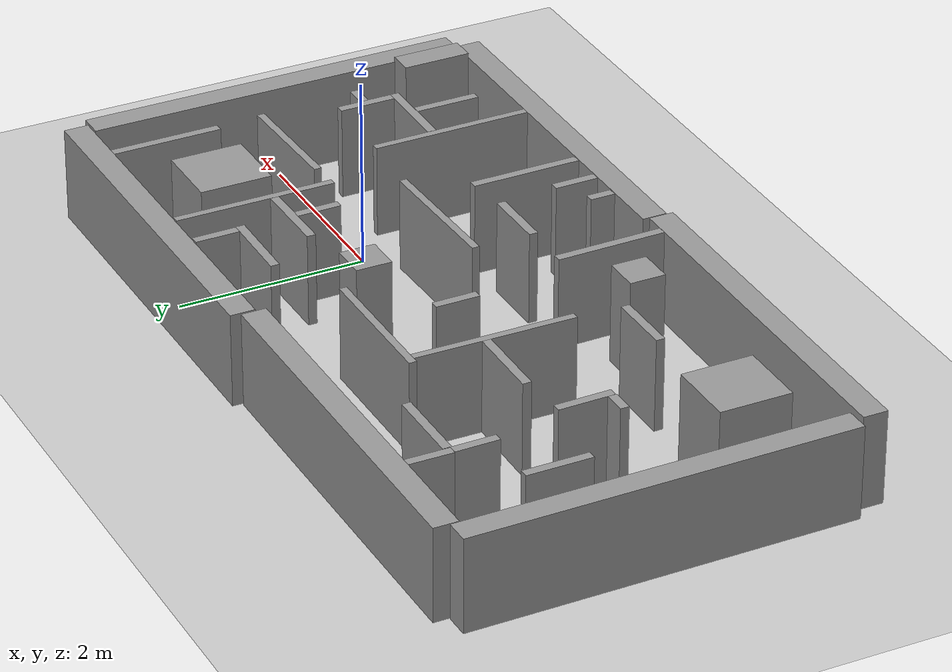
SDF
<sdf version="1.7">
 <world name="default">
  <model name="ground_plane">
   <static>1</static>
   <link name="link">
    <collision name="collision">
     <geometry><plane><normal>0 0 1</normal><size>100 100</size></plane></geometry>
     <surface>
      <contact><collide_bitmask>65535</collide_bitmask></contact>
      <friction><ode><mu>100</mu><mu2>50</mu2></ode></friction>
     </surface>
    </collision>
    <visual name="visual">
     <cast_shadows>0</cast_shadows>
     <geometry><plane><normal>0 0 1</normal><size>100 100</size></plane></geometry>
     <material>
      <script><uri>file://media/materials/scripts/gazebo.material</uri><name>Gazebo/Grey</name></script>
     </material>
    </visual>
   </link>
  </model>
  <light name="sun" type="directional">
   <pose>0 0 10 0 -0 0</pose>
   <diffuse>0.8 0.8 0.8 1</diffuse>
   <specular>0.2 0.2 0.2 1</specular>
   <attenuation>
    <range>1000</range>
    <constant>0.9</constant>
    <linear>0.01</linear>
    <quadratic>0.001</quadratic>
   </attenuation>
   <direction>-0.5 0.1 -0.9</direction>
   <spot><inner_angle>0</inner_angle><outer_angle>0</outer_angle><falloff>0</falloff></spot>
  </light>
  <scene><shadows>0</shadows><ambient>0.4 0.4 0.4 1</ambient><background>0.7 0.7 0.7 1</background></scene>
  <physics type="ode">
   <real_time_update_rate>1000</real_time_update_rate>
   <max_step_size>0.001</max_step_size>
   <real_time_factor>1</real_time_factor>
   <ode>
    <solver>
     <type>quick</type>
     <iters>150</iters>
     <precon_iters>0</precon_iters>
     <sor>1.4</sor>
     <use_dynamic_moi_rescaling>1</use_dynamic_moi_rescaling>
    </solver>
    <constraints>
     <cfm>1e-05</cfm>
     <erp>0.2</erp>
     <contact_max_correcting_vel>2000</contact_max_correcting_vel>
     <contact_surface_layer>0.01</contact_surface_layer>
    </constraints>
   </ode>
  </physics>
  <gravity>0 0 -9.8</gravity>
  <magnetic_field>6e-06 2.3e-05 -4.2e-05</magnetic_field>
  <atmosphere type="adiabatic"/>
  <audio><device>default</device></audio>
  <spherical_coordinates>
   <surface_model>EARTH_WGS84</surface_model>
   <latitude_deg>0</latitude_deg>
   <longitude_deg>0</longitude_deg>
   <elevation>0</elevation>
   <heading_deg>0</heading_deg>
  </spherical_coordinates>
  <model name="unit_box">
   <pose>2.14574 -0.019709 0.499189 0.000399 -1e-06 0.002185</pose>
   <link name="link">
    <inertial>
     <mass>1</mass>
     <inertia>
      <ixx>0.166667</ixx>
      <ixy>0</ixy>
      <ixz>0</ixz>
      <iyy>0.166667</iyy>
      <iyz>0</iyz>
      <izz>0.166667</izz>
     </inertia>
    </inertial>
    <collision name="collision"><geometry><box><size>0.26022 4.07055 1</size></box></geometry></collision>
    <visual name="visual">
     <geometry><box><size>0.26022 4.07055 1</size></box></geometry>
     <material>
      <script><name>Gazebo/Grey</name><uri>file://media/materials/scripts/gazebo.material</uri></script>
     </material>
    </visual>
   </link>
  </model>
  <model name="unit_box_clone_0">
   <pose>0.009461 -2.19278 0.499189 -0.000399 -1e-06 -1.57075</pose>
   <link name="link">
    <inertial>
     <mass>1</mass>
     <inertia>
      <ixx>0.166667</ixx>
      <ixy>0</ixy>
      <ixz>0</ixz>
      <iyy>0.166667</iyy>
      <iyz>0</iyz>
      <izz>0.166667</izz>
     </inertia>
    </inertial>
    <collision name="collision"><geometry><box><size>0.26022 4.07055 1</size></box></geometry></collision>
    <visual name="visual">
     <geometry><box><size>0.26022 4.07055 1</size></box></geometry>
     <material>
      <script><name>Gazebo/Grey</name><uri>file://media/materials/scripts/gazebo.material</uri></script>
     </material>
    </visual>
   </link>
  </model>
  <model name="unit_box_clone_0_clone">
   <pose>0.125755 2.16056 0.499569 0.000212 0 -1.56836</pose>
   <link name="link">
    <inertial>
     <mass>1</mass>
     <inertia>
      <ixx>0.166667</ixx>
      <ixy>0</ixy>
      <ixz>0</ixz>
      <iyy>0.166667</iyy>
      <iyz>0</iyz>
      <izz>0.166667</izz>
     </inertia>
    </inertial>
    <collision name="collision"><geometry><box><size>0.26022 4.07055 1</size></box></geometry></collision>
    <visual name="visual">
     <geometry><box><size>0.26022 4.07055 1</size></box></geometry>
     <material>
      <script><name>Gazebo/Grey</name><uri>file://media/materials/scripts/gazebo.material</uri></script>
     </material>
    </visual>
   </link>
  </model>
  <model name="unit_box_0">
   <pose>0.007068 1.1665 0.499995 6e-06 -0 0.000537</pose>
   <link name="link">
    <inertial>
     <mass>1</mass>
     <inertia>
      <ixx>0.166667</ixx>
      <ixy>0</ixy>
      <ixz>0</ixz>
      <iyy>0.166667</iyy>
      <iyz>0</iyz>
      <izz>0.166667</izz>
     </inertia>
    </inertial>
    <collision name="collision"><geometry><box><size>0.078797 1.70194 1</size></box></geometry></collision>
    <visual name="visual">
     <geometry><box><size>0.078797 1.70194 1</size></box></geometry>
     <material>
      <script><name>Gazebo/Grey</name><uri>file://media/materials/scripts/gazebo.material</uri></script>
     </material>
    </visual>
   </link>
  </model>
  <model name="unit_box_1">
   <pose>-0.454223 0.964594 0.5 0 2e-06 -1.56504</pose>
   <link name="link">
    <inertial>
     <mass>1</mass>
     <inertia>
      <ixx>0.166667</ixx>
      <ixy>0</ixy>
      <ixz>0</ixz>
      <iyy>0.166667</iyy>
      <iyz>0</iyz>
      <izz>0.166667</izz>
     </inertia>
    </inertial>
    <collision name="collision"><geometry><box><size>0.0928899 0.843503 1</size></box></geometry></collision>
    <visual name="visual">
     <geometry><box><size>0.0928899 0.843503 1</size></box></geometry>
     <material>
      <script><name>Gazebo/Grey</name><uri>file://media/materials/scripts/gazebo.material</uri></script>
     </material>
    </visual>
   </link>
  </model>
  <model name="unit_box_1_clone">
   <pose>-0.425457 0.686546 0.49999 -1e-06 -0 -3.13583</pose>
   <link name="link">
    <inertial>
     <mass>1</mass>
     <inertia>
      <ixx>0.166667</ixx>
      <ixy>0</ixy>
      <ixz>0</ixz>
      <iyy>0.166667</iyy>
      <iyz>0</iyz>
      <izz>0.166667</izz>
     </inertia>
    </inertial>
    <collision name="collision"><geometry><box><size>0.092889 0.463527 1</size></box></geometry></collision>
    <visual name="visual">
     <geometry><box><size>0.092889 0.463527 1</size></box></geometry>
     <material>
      <script><name>Gazebo/Grey</name><uri>file://media/materials/scripts/gazebo.material</uri></script>
     </material>
    </visual>
   </link>
  </model>
  <model name="unit_box_1_clone_clone">
   <pose>-0.450673 1.78354 0.5 -2e-06 0 -3.13062</pose>
   <link name="link">
    <inertial>
     <mass>1</mass>
     <inertia>
      <ixx>0.166667</ixx>
      <ixy>0</ixy>
      <ixz>0</ixz>
      <iyy>0.166667</iyy>
      <iyz>0</iyz>
      <izz>0.166667</izz>
     </inertia>
    </inertial>
    <collision name="collision"><geometry><box><size>0.092889 0.463527 1</size></box></geometry></collision>
    <visual name="visual">
     <geometry><box><size>0.092889 0.463527 1</size></box></geometry>
     <material>
      <script><name>Gazebo/Grey</name><uri>file://media/materials/scripts/gazebo.material</uri></script>
     </material>
    </visual>
   </link>
  </model>
  <model name="unit_box_1_clone_0">
   <pose>-0.817941 1.50863 0.5 0 1e-06 -1.5828</pose>
   <link name="link">
    <inertial>
     <mass>1</mass>
     <inertia>
      <ixx>0.166667</ixx>
      <ixy>0</ixy>
      <ixz>0</ixz>
      <iyy>0.166667</iyy>
      <iyz>0</iyz>
      <izz>0.166667</izz>
     </inertia>
    </inertial>
    <collision name="collision"><geometry><box><size>0.092889 0.843503 1</size></box></geometry></collision>
    <visual name="visual">
     <geometry><box><size>0.092889 0.843503 1</size></box></geometry>
     <material>
      <script><name>Gazebo/Grey</name><uri>file://media/materials/scripts/gazebo.material</uri></script>
     </material>
    </visual>
   </link>
  </model>
  <model name="unit_box_2">
   <pose>-1.58951 0.721302 0.532395 0 -0 0</pose>
   <link name="link">
    <inertial>
     <mass>1</mass>
     <inertia>
      <ixx>0.166667</ixx>
      <ixy>0</ixy>
      <ixz>0</ixz>
      <iyy>0.166667</iyy>
      <iyz>0</iyz>
      <izz>0.166667</izz>
     </inertia>
    </inertial>
    <collision name="collision"><geometry><box><size>0.384559 0.377925 1.06479</size></box></geometry></collision>
    <visual name="visual">
     <geometry><box><size>0.384559 0.377925 1.06479</size></box></geometry>
     <material>
      <script><name>Gazebo/Grey</name><uri>file://media/materials/scripts/gazebo.material</uri></script>
     </material>
    </visual>
   </link>
  </model>
  <model name="unit_box_0_clone">
   <pose>-1.03258 -0.337879 0.499999 -1e-06 -1e-06 -1.54028</pose>
   <link name="link">
    <inertial>
     <mass>1</mass>
     <inertia>
      <ixx>0.166667</ixx>
      <ixy>0</ixy>
      <ixz>0</ixz>
      <iyy>0.166667</iyy>
      <iyz>0</iyz>
      <izz>0.166667</izz>
     </inertia>
    </inertial>
    <collision name="collision"><geometry><box><size>0.078797 1.5133 1</size></box></geometry></collision>
    <visual name="visual">
     <geometry><box><size>0.078797 1.5133 1</size></box></geometry>
     <material>
      <script><name>Gazebo/Grey</name><uri>file://media/materials/scripts/gazebo.material</uri></script>
     </material>
    </visual>
   </link>
  </model>
  <model name="unit_box_1_clone_1">
   <pose>-1.45481 -0.979134 0.500001 0 1.6e-05 -1.56576</pose>
   <link name="link">
    <inertial>
     <mass>1</mass>
     <inertia>
      <ixx>0.166667</ixx>
      <ixy>0</ixy>
      <ixz>0</ixz>
      <iyy>0.166667</iyy>
      <iyz>0</iyz>
      <izz>0.166667</izz>
     </inertia>
    </inertial>
    <collision name="collision"><geometry><box><size>0.092889 0.69078 1</size></box></geometry></collision>
    <visual name="visual">
     <geometry><box><size>0.092889 0.69078 1</size></box></geometry>
     <material>
      <script><name>Gazebo/Grey</name><uri>file://media/materials/scripts/gazebo.material</uri></script>
     </material>
    </visual>
   </link>
  </model>
  <model name="unit_box_1_clone_clone_0">
   <pose>-0.658435 -1.47224 0.499999 1e-06 -0 -3.13484</pose>
   <link name="link">
    <inertial>
     <mass>1</mass>
     <inertia>
      <ixx>0.166667</ixx>
      <ixy>0</ixy>
      <ixz>0</ixz>
      <iyy>0.166667</iyy>
      <iyz>0</iyz>
      <izz>0.166667</izz>
     </inertia>
    </inertial>
    <collision name="collision"><geometry><box><size>0.092889 1.16426 1</size></box></geometry></collision>
    <visual name="visual">
     <geometry><box><size>0.092889 1.16426 1</size></box></geometry>
     <material>
      <script><name>Gazebo/Grey</name><uri>file://media/materials/scripts/gazebo.material</uri></script>
     </material>
    </visual>
   </link>
  </model>
  <model name="unit_box_1_clone_clone_1">
   <pose>-1.05509 -1.82292 0.5 1e-06 -0 -3.13452</pose>
   <link name="link">
    <inertial>
     <mass>1</mass>
     <inertia>
      <ixx>0.166667</ixx>
      <ixy>0</ixy>
      <ixz>0</ixz>
      <iyy>0.166667</iyy>
      <iyz>0</iyz>
      <izz>0.166667</izz>
     </inertia>
    </inertial>
    <collision name="collision"><geometry><box><size>0.092889 0.463527 1</size></box></geometry></collision>
    <visual name="visual">
     <geometry><box><size>0.092889 0.463527 1</size></box></geometry>
     <material>
      <script><name>Gazebo/Grey</name><uri>file://media/materials/scripts/gazebo.material</uri></script>
     </material>
    </visual>
   </link>
  </model>
  <model name="unit_box_1_clone_clone_2">
   <pose>-1.4138 -1.92276 0.5 1e-06 -0 -3.13536</pose>
   <link name="link">
    <inertial>
     <mass>1</mass>
     <inertia>
      <ixx>0.166667</ixx>
      <ixy>0</ixy>
      <ixz>0</ixz>
      <iyy>0.166667</iyy>
      <iyz>0</iyz>
      <izz>0.166667</izz>
     </inertia>
    </inertial>
    <collision name="collision"><geometry><box><size>0.092889 0.263008 1</size></box></geometry></collision>
    <visual name="visual">
     <geometry><box><size>0.092889 0.263008 1</size></box></geometry>
     <material>
      <script><name>Gazebo/Grey</name><uri>file://media/materials/scripts/gazebo.material</uri></script>
     </material>
    </visual>
   </link>
  </model>
  <model name="unit_box_0_clone_0">
   <pose>0.463131 -1.21009 0.499995 -6e-06 0 0.00493</pose>
   <link name="link">
    <inertial>
     <mass>1</mass>
     <inertia>
      <ixx>0.166667</ixx>
      <ixy>0</ixy>
      <ixz>0</ixz>
      <iyy>0.166667</iyy>
      <iyz>0</iyz>
      <izz>0.166667</izz>
     </inertia>
    </inertial>
    <collision name="collision"><geometry><box><size>0.078797 1.70195 1</size></box></geometry></collision>
    <visual name="visual">
     <geometry><box><size>0.078797 1.70195 1</size></box></geometry>
     <material>
      <script><name>Gazebo/Grey</name><uri>file://media/materials/scripts/gazebo.material</uri></script>
     </material>
    </visual>
   </link>
  </model>
  <model name="unit_box_1_clone_1_clone">
   <pose>0.945624 -1.02365 0.5 0 1e-06 -1.58381</pose>
   <link name="link">
    <inertial>
     <mass>1</mass>
     <inertia>
      <ixx>0.166667</ixx>
      <ixy>0</ixy>
      <ixz>0</ixz>
      <iyy>0.166667</iyy>
      <iyz>0</iyz>
      <izz>0.166667</izz>
     </inertia>
    </inertial>
    <collision name="collision"><geometry><box><size>0.092889 0.886457 1</size></box></geometry></collision>
    <visual name="visual">
     <geometry><box><size>0.092889 0.886457 1</size></box></geometry>
     <material>
      <script><name>Gazebo/Grey</name><uri>file://media/materials/scripts/gazebo.material</uri></script>
     </material>
    </visual>
   </link>
  </model>
  <model name="unit_box_1_clone_clone_3">
   <pose>1.34099 -0.683393 0.5 -0 -4e-06 -3.13658</pose>
   <link name="link">
    <inertial>
     <mass>1</mass>
     <inertia>
      <ixx>0.166667</ixx>
      <ixy>0</ixy>
      <ixz>0</ixz>
      <iyy>0.166667</iyy>
      <iyz>0</iyz>
      <izz>0.166667</izz>
     </inertia>
    </inertial>
    <collision name="collision"><geometry><box><size>0.092889 0.596244 1</size></box></geometry></collision>
    <visual name="visual">
     <geometry><box><size>0.092889 0.596244 1</size></box></geometry>
     <material>
      <script><name>Gazebo/Grey</name><uri>file://media/materials/scripts/gazebo.material</uri></script>
     </material>
    </visual>
   </link>
  </model>
  <model name="unit_box_1_clone_1_clone_0">
   <pose>1.5087 -0.684982 0.5 -1e-06 0 -1.56421</pose>
   <link name="link">
    <inertial>
     <mass>1</mass>
     <inertia>
      <ixx>0.166667</ixx>
      <ixy>0</ixy>
      <ixz>0</ixz>
      <iyy>0.166667</iyy>
      <iyz>0</iyz>
      <izz>0.166667</izz>
     </inertia>
    </inertial>
    <collision name="collision"><geometry><box><size>0.092889 0.241744 1</size></box></geometry></collision>
    <visual name="visual">
     <geometry><box><size>0.092889 0.241744 1</size></box></geometry>
     <material>
      <script><name>Gazebo/Grey</name><uri>file://media/materials/scripts/gazebo.material</uri></script>
     </material>
    </visual>
   </link>
  </model>
  <model name="unit_box_1_clone_clone_4">
   <pose>0.986761 -1.41723 0.499997 -3e-06 -0 -3.13938</pose>
   <link name="link">
    <inertial>
     <mass>1</mass>
     <inertia>
      <ixx>0.166667</ixx>
      <ixy>0</ixy>
      <ixz>0</ixz>
      <iyy>0.166667</iyy>
      <iyz>0</iyz>
      <izz>0.166667</izz>
     </inertia>
    </inertial>
    <collision name="collision"><geometry><box><size>0.092889 0.691772 1</size></box></geometry></collision>
    <visual name="visual">
     <geometry><box><size>0.092889 0.691772 1</size></box></geometry>
     <material>
      <script><name>Gazebo/Grey</name><uri>file://media/materials/scripts/gazebo.material</uri></script>
     </material>
    </visual>
   </link>
  </model>
  <model name="unit_box_0_clone_clone">
   <pose>0.950498 0.36062 0.5 0 0 -1.53999</pose>
   <link name="link">
    <inertial>
     <mass>1</mass>
     <inertia>
      <ixx>0.166667</ixx>
      <ixy>0</ixy>
      <ixz>0</ixz>
      <iyy>0.166667</iyy>
      <iyz>0</iyz>
      <izz>0.166667</izz>
     </inertia>
    </inertial>
    <collision name="collision"><geometry><box><size>0.078797 1.28645 1</size></box></geometry></collision>
    <visual name="visual">
     <geometry><box><size>0.078797 1.28645 1</size></box></geometry>
     <material>
      <script><name>Gazebo/Grey</name><uri>file://media/materials/scripts/gazebo.material</uri></script>
     </material>
    </visual>
   </link>
  </model>
  <model name="unit_box_2_clone">
   <pose>1.86977 -1.68755 0.532396 -0 4e-06 4.7e-05</pose>
   <link name="link">
    <inertial>
     <mass>1</mass>
     <inertia>
      <ixx>0.166667</ixx>
      <ixy>0</ixy>
      <ixz>0</ixz>
      <iyy>0.166667</iyy>
      <iyz>0</iyz>
      <izz>0.166667</izz>
     </inertia>
    </inertial>
    <collision name="collision"><geometry><box><size>0.266937 0.722577 1.06479</size></box></geometry></collision>
    <visual name="visual">
     <geometry><box><size>0.266937 0.722577 1.06479</size></box></geometry>
     <material>
      <script><name>Gazebo/Grey</name><uri>file://media/materials/scripts/gazebo.material</uri></script>
     </material>
    </visual>
   </link>
  </model>
  <model name="unit_box_1_clone_clone_0_clone">
   <pose>1.53041 1.45164 0.500001 -0 2.4e-05 -3.13705</pose>
   <link name="link">
    <inertial>
     <mass>1</mass>
     <inertia>
      <ixx>0.166667</ixx>
      <ixy>0</ixy>
      <ixz>0</ixz>
      <iyy>0.166667</iyy>
      <iyz>0</iyz>
      <izz>0.166667</izz>
     </inertia>
    </inertial>
    <collision name="collision"><geometry><box><size>0.092889 1.16426 1</size></box></geometry></collision>
    <visual name="visual">
     <geometry><box><size>0.092889 1.16426 1</size></box></geometry>
     <material>
      <script><name>Gazebo/Grey</name><uri>file://media/materials/scripts/gazebo.material</uri></script>
     </material>
    </visual>
   </link>
  </model>
  <model name="unit_box_3">
   <pose>0.747263 1.19364 0.5 0 -0 0</pose>
   <link name="link">
    <inertial>
     <mass>1</mass>
     <inertia>
      <ixx>0.166667</ixx>
      <ixy>0</ixy>
      <ixz>0</ixz>
      <iyy>0.166667</iyy>
      <iyz>0</iyz>
      <izz>0.166667</izz>
     </inertia>
    </inertial>
    <collision name="collision"><geometry><box><size>0.740669 0.762182 1</size></box></geometry></collision>
    <visual name="visual">
     <geometry><box><size>0.740669 0.762182 1</size></box></geometry>
     <material>
      <script><name>Gazebo/Grey</name><uri>file://media/materials/scripts/gazebo.material</uri></script>
     </material>
    </visual>
   </link>
  </model>
  <model name="unit_box_clone_0_clone_clone">
   <pose>-3.96958 2.05276 0.499173 -0.000397 1e-06 -1.57041</pose>
   <link name="link">
    <inertial>
     <mass>1</mass>
     <inertia>
      <ixx>0.166667</ixx>
      <ixy>0</ixy>
      <ixz>0</ixz>
      <iyy>0.166667</iyy>
      <iyz>0</iyz>
      <izz>0.166667</izz>
     </inertia>
    </inertial>
    <collision name="collision"><geometry><box><size>0.26022 4.07055 1</size></box></geometry></collision>
    <visual name="visual">
     <geometry><box><size>0.26022 4.07055 1</size></box></geometry>
     <material>
      <script><name>Gazebo/Grey</name><uri>file://media/materials/scripts/gazebo.material</uri></script>
     </material>
    </visual>
   </link>
  </model>
  <model name="unit_box_clone_0_clone_clone_0">
   <pose>-4.0737 -2.25339 0.499189 0.000399 1e-06 -1.57303</pose>
   <link name="link">
    <inertial>
     <mass>1</mass>
     <inertia>
      <ixx>0.166667</ixx>
      <ixy>0</ixy>
      <ixz>0</ixz>
      <iyy>0.166667</iyy>
      <iyz>0</iyz>
      <izz>0.166667</izz>
     </inertia>
    </inertial>
    <collision name="collision"><geometry><box><size>0.26022 4.07055 1</size></box></geometry></collision>
    <visual name="visual">
     <geometry><box><size>0.26022 4.07055 1</size></box></geometry>
     <material>
      <script><name>Gazebo/Grey</name><uri>file://media/materials/scripts/gazebo.material</uri></script>
     </material>
    </visual>
   </link>
  </model>
  <model name="unit_box_clone">
   <pose>-6.13046 -0.018336 0.499189 -0.000399 1e-06 0.006363</pose>
   <link name="link">
    <inertial>
     <mass>1</mass>
     <inertia>
      <ixx>0.166667</ixx>
      <ixy>0</ixy>
      <ixz>0</ixz>
      <iyy>0.166667</iyy>
      <iyz>0</iyz>
      <izz>0.166667</izz>
     </inertia>
    </inertial>
    <collision name="collision"><geometry><box><size>0.26022 4.07055 1</size></box></geometry></collision>
    <visual name="visual">
     <geometry><box><size>0.26022 4.07055 1</size></box></geometry>
     <material>
      <script><name>Gazebo/Grey</name><uri>file://media/materials/scripts/gazebo.material</uri></script>
     </material>
    </visual>
   </link>
  </model>
  <model name="unit_box_3_clone">
   <pose>-5.08873 -1.37606 0.499995 -5e-06 -8e-06 0</pose>
   <link name="link">
    <inertial>
     <mass>1</mass>
     <inertia>
      <ixx>0.166667</ixx>
      <ixy>0</ixy>
      <ixz>0</ixz>
      <iyy>0.166667</iyy>
      <iyz>0</iyz>
      <izz>0.166667</izz>
     </inertia>
    </inertial>
    <collision name="collision"><geometry><box><size>0.740669 0.762182 1</size></box></geometry></collision>
    <visual name="visual">
     <geometry><box><size>0.740669 0.762182 1</size></box></geometry>
     <material>
      <script><name>Gazebo/Grey</name><uri>file://media/materials/scripts/gazebo.material</uri></script>
     </material>
    </visual>
   </link>
  </model>
  <model name="unit_box_1_clone_clone_0_clone_0">
   <pose>-2.30712 -1.54438 0.499991 0 1.9e-05 -3.1276</pose>
   <link name="link">
    <inertial>
     <mass>1</mass>
     <inertia>
      <ixx>0.166667</ixx>
      <ixy>0</ixy>
      <ixz>0</ixz>
      <iyy>0.166667</iyy>
      <iyz>0</iyz>
      <izz>0.166667</izz>
     </inertia>
    </inertial>
    <collision name="collision"><geometry><box><size>0.092889 1.16426 1</size></box></geometry></collision>
    <visual name="visual">
     <geometry><box><size>0.092889 1.16426 1</size></box></geometry>
     <material>
      <script><name>Gazebo/Grey</name><uri>file://media/materials/scripts/gazebo.material</uri></script>
     </material>
    </visual>
   </link>
  </model>
  <model name="unit_box_0_clone_clone_0">
   <pose>-2.67352 1.11613 0.499999 1e-06 -1e-06 -1.57156</pose>
   <link name="link">
    <inertial>
     <mass>1</mass>
     <inertia>
      <ixx>0.166667</ixx>
      <ixy>0</ixy>
      <ixz>0</ixz>
      <iyy>0.166667</iyy>
      <iyz>0</iyz>
      <izz>0.166667</izz>
     </inertia>
    </inertial>
    <collision name="collision"><geometry><box><size>0.078797 1.5133 1</size></box></geometry></collision>
    <visual name="visual">
     <geometry><box><size>0.078797 1.5133 1</size></box></geometry>
     <material>
      <script><name>Gazebo/Grey</name><uri>file://media/materials/scripts/gazebo.material</uri></script>
     </material>
    </visual>
   </link>
  </model>
  <model name="unit_box_2_clone_0">
   <pose>-2.96659 -1.50069 0.532395 0 -0 0</pose>
   <link name="link">
    <inertial>
     <mass>1</mass>
     <inertia>
      <ixx>0.166667</ixx>
      <ixy>0</ixy>
      <ixz>0</ixz>
      <iyy>0.166667</iyy>
      <iyz>0</iyz>
      <izz>0.166667</izz>
     </inertia>
    </inertial>
    <collision name="collision"><geometry><box><size>0.384559 0.377925 1.06479</size></box></geometry></collision>
    <visual name="visual">
     <geometry><box><size>0.384559 0.377925 1.06479</size></box></geometry>
     <material>
      <script><name>Gazebo/Grey</name><uri>file://media/materials/scripts/gazebo.material</uri></script>
     </material>
    </visual>
   </link>
  </model>
  <model name="unit_box_0_clone_0_clone">
   <pose>-3.34143 0.225859 0.499996 -5e-06 -0 -0.010676</pose>
   <link name="link">
    <inertial>
     <mass>1</mass>
     <inertia>
      <ixx>0.166667</ixx>
      <ixy>0</ixy>
      <ixz>0</ixz>
      <iyy>0.166667</iyy>
      <iyz>0</iyz>
      <izz>0.166667</izz>
     </inertia>
    </inertial>
    <collision name="collision"><geometry><box><size>0.078797 1.70195 1</size></box></geometry></collision>
    <visual name="visual">
     <geometry><box><size>0.078797 1.70195 1</size></box></geometry>
     <material>
      <script><name>Gazebo/Grey</name><uri>file://media/materials/scripts/gazebo.material</uri></script>
     </material>
    </visual>
   </link>
  </model>
  <model name="unit_box_1_clone_clone_5">
   <pose>-2.58401 0.249396 0.499999 -3e-06 -0 -3.13558</pose>
   <link name="link">
    <inertial>
     <mass>1</mass>
     <inertia>
      <ixx>0.166667</ixx>
      <ixy>0</ixy>
      <ixz>0</ixz>
      <iyy>0.166667</iyy>
      <iyz>0</iyz>
      <izz>0.166667</izz>
     </inertia>
    </inertial>
    <collision name="collision"><geometry><box><size>0.092889 0.463527 1</size></box></geometry></collision>
    <visual name="visual">
     <geometry><box><size>0.092889 0.463527 1</size></box></geometry>
     <material>
      <script><name>Gazebo/Grey</name><uri>file://media/materials/scripts/gazebo.material</uri></script>
     </material>
    </visual>
   </link>
  </model>
  <model name="unit_box_1_clone_1_clone_0_clone">
   <pose>-4.88041 -0.260939 0.5 1e-06 0 -1.56147</pose>
   <link name="link">
    <inertial>
     <mass>1</mass>
     <inertia>
      <ixx>0.166667</ixx>
      <ixy>0</ixy>
      <ixz>0</ixz>
      <iyy>0.166667</iyy>
      <iyz>0</iyz>
      <izz>0.166667</izz>
     </inertia>
    </inertial>
    <collision name="collision"><geometry><box><size>0.092889 0.241744 1</size></box></geometry></collision>
    <visual name="visual">
     <geometry><box><size>0.092889 0.241744 1</size></box></geometry>
     <material>
      <script><name>Gazebo/Grey</name><uri>file://media/materials/scripts/gazebo.material</uri></script>
     </material>
    </visual>
   </link>
  </model>
  <model name="unit_box_1_clone_clone_3_clone">
   <pose>-4.71697 0.000211 0.5 0 1e-06 -3.12535</pose>
   <link name="link">
    <inertial>
     <mass>1</mass>
     <inertia>
      <ixx>0.166667</ixx>
      <ixy>0</ixy>
      <ixz>0</ixz>
      <iyy>0.166667</iyy>
      <iyz>0</iyz>
      <izz>0.166667</izz>
     </inertia>
    </inertial>
    <collision name="collision"><geometry><box><size>0.092889 0.596244 1</size></box></geometry></collision>
    <visual name="visual">
     <geometry><box><size>0.092889 0.596244 1</size></box></geometry>
     <material>
      <script><name>Gazebo/Grey</name><uri>file://media/materials/scripts/gazebo.material</uri></script>
     </material>
    </visual>
   </link>
  </model>
  <model name="unit_box_1_clone_clone_4_clone">
   <pose>-5.56787 0.722115 0.5 0 -0 -3.13931</pose>
   <link name="link">
    <inertial>
     <mass>1</mass>
     <inertia>
      <ixx>0.166667</ixx>
      <ixy>0</ixy>
      <ixz>0</ixz>
      <iyy>0.166667</iyy>
      <iyz>0</iyz>
      <izz>0.166667</izz>
     </inertia>
    </inertial>
    <collision name="collision"><geometry><box><size>0.092889 0.691772 1</size></box></geometry></collision>
    <visual name="visual">
     <geometry><box><size>0.092889 0.691772 1</size></box></geometry>
     <material>
      <script><name>Gazebo/Grey</name><uri>file://media/materials/scripts/gazebo.material</uri></script>
     </material>
    </visual>
   </link>
  </model>
  <model name="unit_box_1_clone_0_clone">
   <pose>-4.46642 1.48504 0.5 0 1e-06 -1.57225</pose>
   <link name="link">
    <inertial>
     <mass>1</mass>
     <inertia>
      <ixx>0.166667</ixx>
      <ixy>0</ixy>
      <ixz>0</ixz>
      <iyy>0.166667</iyy>
      <iyz>0</iyz>
      <izz>0.166667</izz>
     </inertia>
    </inertial>
    <collision name="collision"><geometry><box><size>0.092889 0.843503 1</size></box></geometry></collision>
    <visual name="visual">
     <geometry><box><size>0.092889 0.843503 1</size></box></geometry>
     <material>
      <script><name>Gazebo/Grey</name><uri>file://media/materials/scripts/gazebo.material</uri></script>
     </material>
    </visual>
   </link>
  </model>
  <model name="unit_box_1_clone_clone_clone">
   <pose>-4.9408 1.69005 0.500001 0 -1.2e-05 3.13177</pose>
   <link name="link">
    <inertial>
     <mass>1</mass>
     <inertia>
      <ixx>0.166667</ixx>
      <ixy>0</ixy>
      <ixz>0</ixz>
      <iyy>0.166667</iyy>
      <iyz>0</iyz>
      <izz>0.166667</izz>
     </inertia>
    </inertial>
    <collision name="collision"><geometry><box><size>0.092889 0.463527 1</size></box></geometry></collision>
    <visual name="visual">
     <geometry><box><size>0.092889 0.463527 1</size></box></geometry>
     <material>
      <script><name>Gazebo/Grey</name><uri>file://media/materials/scripts/gazebo.material</uri></script>
     </material>
    </visual>
   </link>
  </model>
  <model name="unit_box_1_clone_0_clone_clone">
   <pose>-3.80147 0.33311 0.499998 1e-06 -0 -1.58146</pose>
   <link name="link">
    <inertial>
     <mass>1</mass>
     <inertia>
      <ixx>0.166667</ixx>
      <ixy>0</ixy>
      <ixz>0</ixz>
      <iyy>0.166667</iyy>
      <iyz>0</iyz>
      <izz>0.166667</izz>
     </inertia>
    </inertial>
    <collision name="collision"><geometry><box><size>0.092889 0.843503 1</size></box></geometry></collision>
    <visual name="visual">
     <geometry><box><size>0.092889 0.843503 1</size></box></geometry>
     <material>
      <script><name>Gazebo/Grey</name><uri>file://media/materials/scripts/gazebo.material</uri></script>
     </material>
    </visual>
   </link>
  </model>
  <model name="unit_box_1_clone_1_clone_1">
   <pose>-3.74703 -1.12705 0.499998 -6e-06 -1e-06 -1.56574</pose>
   <link name="link">
    <inertial>
     <mass>1</mass>
     <inertia>
      <ixx>0.166667</ixx>
      <ixy>0</ixy>
      <ixz>0</ixz>
      <iyy>0.166667</iyy>
      <iyz>0</iyz>
      <izz>0.166667</izz>
     </inertia>
    </inertial>
    <collision name="collision"><geometry><box><size>0.092889 0.69078 1</size></box></geometry></collision>
    <visual name="visual">
     <geometry><box><size>0.092889 0.69078 1</size></box></geometry>
     <material>
      <script><name>Gazebo/Grey</name><uri>file://media/materials/scripts/gazebo.material</uri></script>
     </material>
    </visual>
   </link>
  </model>
  <model name="unit_box_1_clone_clone_6">
   <pose>-4.93299 1.22572 0.500001 -6e-06 0 -3.13362</pose>
   <link name="link">
    <inertial>
     <mass>1</mass>
     <inertia>
      <ixx>0.166667</ixx>
      <ixy>0</ixy>
      <ixz>0</ixz>
      <iyy>0.166667</iyy>
      <iyz>0</iyz>
      <izz>0.166667</izz>
     </inertia>
    </inertial>
    <collision name="collision"><geometry><box><size>0.092889 0.463527 1</size></box></geometry></collision>
    <visual name="visual">
     <geometry><box><size>0.092889 0.463527 1</size></box></geometry>
     <material>
      <script><name>Gazebo/Grey</name><uri>file://media/materials/scripts/gazebo.material</uri></script>
     </material>
    </visual>
   </link>
  </model>
 </world>
</sdf>
